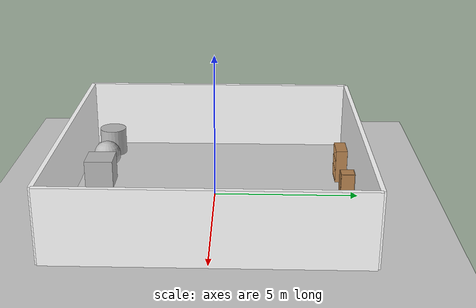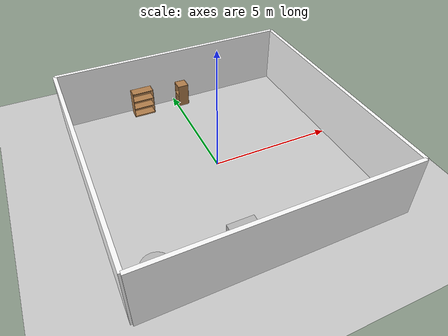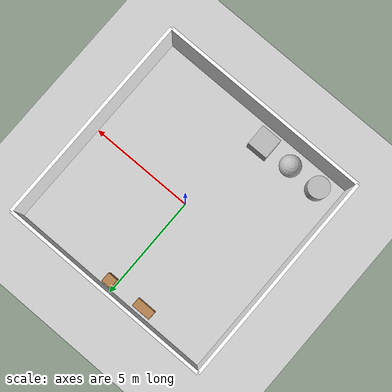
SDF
<sdf version="1.6">
 <world name="default">
  <light name="sun" type="directional">
   <pose>0 0 10 0 -0 0</pose>
   <diffuse>0.8 0.8 0.8 1</diffuse>
   <specular>0.1 0.1 0.1 1</specular>
   <attenuation>
    <range>1000</range>
    <constant>0.9</constant>
    <linear>0.01</linear>
    <quadratic>0.001</quadratic>
   </attenuation>
   <direction>-0.5 0.5 -1</direction>
  </light>
  <model name="ground_plane">
   <static>1</static>
   <link name="link">
    <collision name="collision">
     <geometry><plane><normal>0 0 1</normal><size>100 100</size></plane></geometry>
     <surface><friction><ode><mu>100</mu><mu2>50</mu2></ode></friction></surface>
    </collision>
    <visual name="visual">
     <cast_shadows>0</cast_shadows>
     <geometry><plane><normal>0 0 1</normal><size>100 100</size></plane></geometry>
     <material>
      <script><uri>file://media/materials/scripts/gazebo.material</uri><name>Gazebo/Grey</name></script>
     </material>
    </visual>
   </link>
  </model>
  <gravity>0 0 -9.8</gravity>
  <magnetic_field>6e-06 2.3e-05 -4.2e-05</magnetic_field>
  <atmosphere type="adiabatic"/>
  <physics name="default_physics" default="0" type="ode">
   <max_step_size>0.001</max_step_size>
   <real_time_factor>1</real_time_factor>
   <real_time_update_rate>1000</real_time_update_rate>
  </physics>
  <scene><ambient>0.4 0.4 0.4 1</ambient><background>0.7 0.7 0.7 1</background><shadows>1</shadows></scene>
  <spherical_coordinates>
   <surface_model>EARTH_WGS84</surface_model>
   <latitude_deg>0</latitude_deg>
   <longitude_deg>0</longitude_deg>
   <elevation>0</elevation>
   <heading_deg>0</heading_deg>
  </spherical_coordinates>
  <model name="rwLab_10m">
   <link name="Wall_12">
    <pose>-5 0 0 0 -0 1.5708</pose>
    <inertial>
     <mass>1</mass>
     <inertia><ixx>1</ixx><ixy>0</ixy><ixz>0</ixz><iyy>1</iyy><iyz>0</iyz><izz>1</izz></inertia>
    </inertial>
    <visual name="Wall_12_Visual">
     <pose>0 0 1.25 0 -0 0</pose>
     <geometry><box><size>10 0.15 2.5</size></box></geometry>
     <material>
      <script>
       <uri>model://rwLab_10m/materials/scripts</uri>
       <uri>model://rwLab_10m/materials/textures</uri>
       <name>rw/ceramic</name>
      </script>
      <ambient>1 1 1 1</ambient>
      <diffuse>1 1 1 1</diffuse>
      <specular>0 0 0 1</specular>
      <emissive>0 0 0 1</emissive>
      <shader type="vertex"><normal_map>__default__</normal_map></shader>
     </material>
     <meta><layer>0</layer></meta>
    </visual>
    <collision name="Wall_12_Collision">
     <pose>0 0 1.25 0 -0 0</pose>
     <geometry><box><size>10 0.15 2.5</size></box></geometry>
     <surface>
      <friction>
       <ode><mu>1</mu><mu2>1</mu2><fdir1>0 0 0</fdir1><slip1>0</slip1><slip2>0</slip2></ode>
       <torsional>
        <coefficient>1</coefficient>
        <patch_radius>0</patch_radius>
        <surface_radius>0</surface_radius>
        <use_patch_radius>1</use_patch_radius>
        <ode><slip>0</slip></ode>
       </torsional>
      </friction>
      <bounce><restitution_coefficient>0</restitution_coefficient><threshold>1e+06</threshold></bounce>
      <contact>
       <collide_without_contact>0</collide_without_contact>
       <collide_without_contact_bitmask>1</collide_without_contact_bitmask>
       <collide_bitmask>1</collide_bitmask>
       <ode>
        <soft_cfm>0</soft_cfm>
        <soft_erp>0.2</soft_erp>
        <kp>1e+13</kp>
        <kd>1</kd>
        <max_vel>0.01</max_vel>
        <min_depth>0</min_depth>
       </ode>
       <bullet>
        <split_impulse>1</split_impulse>
        <split_impulse_penetration_threshold>-0.01</split_impulse_penetration_threshold>
        <soft_cfm>0</soft_cfm>
        <soft_erp>0.2</soft_erp>
        <kp>1e+13</kp>
        <kd>1</kd>
       </bullet>
      </contact>
     </surface>
    </collision>
   </link>
   <link name="Wall_13">
    <pose>0 5 0 0 -0 0</pose>
    <inertial>
     <mass>1</mass>
     <inertia><ixx>1</ixx><ixy>0</ixy><ixz>0</ixz><iyy>1</iyy><iyz>0</iyz><izz>1</izz></inertia>
    </inertial>
    <visual name="Wall_13_Visual">
     <pose>0 0 1.25 0 -0 0</pose>
     <geometry><box><size>10 0.15 2.5</size></box></geometry>
     <material>
      <script>
       <uri>model://rwLab_10m/materials/scripts</uri>
       <uri>model://rwLab_10m/materials/textures</uri>
       <name>rw/brick</name>
      </script>
      <ambient>1 1 1 1</ambient>
      <diffuse>1 1 1 1</diffuse>
      <specular>0 0 0 1</specular>
      <emissive>0 0 0 1</emissive>
      <shader type="vertex"><normal_map>__default__</normal_map></shader>
     </material>
     <meta><layer>0</layer></meta>
    </visual>
    <collision name="Wall_13_Collision">
     <pose>0 0 1.25 0 -0 0</pose>
     <geometry><box><size>10 0.15 2.5</size></box></geometry>
     <surface>
      <friction>
       <ode><mu>1</mu><mu2>1</mu2><fdir1>0 0 0</fdir1><slip1>0</slip1><slip2>0</slip2></ode>
       <torsional>
        <coefficient>1</coefficient>
        <patch_radius>0</patch_radius>
        <surface_radius>0</surface_radius>
        <use_patch_radius>1</use_patch_radius>
        <ode><slip>0</slip></ode>
       </torsional>
      </friction>
      <bounce><restitution_coefficient>0</restitution_coefficient><threshold>1e+06</threshold></bounce>
      <contact>
       <collide_without_contact>0</collide_without_contact>
       <collide_without_contact_bitmask>1</collide_without_contact_bitmask>
       <collide_bitmask>1</collide_bitmask>
       <ode>
        <soft_cfm>0</soft_cfm>
        <soft_erp>0.2</soft_erp>
        <kp>1e+13</kp>
        <kd>1</kd>
        <max_vel>0.01</max_vel>
        <min_depth>0</min_depth>
       </ode>
       <bullet>
        <split_impulse>1</split_impulse>
        <split_impulse_penetration_threshold>-0.01</split_impulse_penetration_threshold>
        <soft_cfm>0</soft_cfm>
        <soft_erp>0.2</soft_erp>
        <kp>1e+13</kp>
        <kd>1</kd>
       </bullet>
      </contact>
     </surface>
    </collision>
   </link>
   <link name="Wall_14">
    <pose>5 0 0 0 0 -1.5708</pose>
    <inertial>
     <mass>1</mass>
     <inertia><ixx>1</ixx><ixy>0</ixy><ixz>0</ixz><iyy>1</iyy><iyz>0</iyz><izz>1</izz></inertia>
    </inertial>
    <visual name="Wall_14_Visual">
     <pose>0 0 1.25 0 -0 0</pose>
     <geometry><box><size>10 0.15 2.5</size></box></geometry>
     <material>
      <script>
       <uri>model://rwLab_10m/materials/scripts</uri>
       <uri>model://rwLab_10m/materials/textures</uri>
       <name>rw/hex</name>
      </script>
      <ambient>1 1 1 1</ambient>
      <diffuse>1 1 1 1</diffuse>
      <specular>0 0 0 1</specular>
      <emissive>0 0 0 1</emissive>
      <shader type="vertex"><normal_map>__default__</normal_map></shader>
     </material>
     <meta><layer>0</layer></meta>
    </visual>
    <collision name="Wall_14_Collision">
     <pose>0 0 1.25 0 -0 0</pose>
     <geometry><box><size>10 0.15 2.5</size></box></geometry>
     <surface>
      <friction>
       <ode><mu>1</mu><mu2>1</mu2><fdir1>0 0 0</fdir1><slip1>0</slip1><slip2>0</slip2></ode>
       <torsional>
        <coefficient>1</coefficient>
        <patch_radius>0</patch_radius>
        <surface_radius>0</surface_radius>
        <use_patch_radius>1</use_patch_radius>
        <ode><slip>0</slip></ode>
       </torsional>
      </friction>
      <bounce><restitution_coefficient>0</restitution_coefficient><threshold>1e+06</threshold></bounce>
      <contact>
       <collide_without_contact>0</collide_without_contact>
       <collide_without_contact_bitmask>1</collide_without_contact_bitmask>
       <collide_bitmask>1</collide_bitmask>
       <ode>
        <soft_cfm>0</soft_cfm>
        <soft_erp>0.2</soft_erp>
        <kp>1e+13</kp>
        <kd>1</kd>
        <max_vel>0.01</max_vel>
        <min_depth>0</min_depth>
       </ode>
       <bullet>
        <split_impulse>1</split_impulse>
        <split_impulse_penetration_threshold>-0.01</split_impulse_penetration_threshold>
        <soft_cfm>0</soft_cfm>
        <soft_erp>0.2</soft_erp>
        <kp>1e+13</kp>
        <kd>1</kd>
       </bullet>
      </contact>
     </surface>
    </collision>
   </link>
   <link name="Wall_15">
    <pose>0 -5 0 0 -0 3.14159</pose>
    <inertial>
     <mass>1</mass>
     <inertia><ixx>1</ixx><ixy>0</ixy><ixz>0</ixz><iyy>1</iyy><iyz>0</iyz><izz>1</izz></inertia>
    </inertial>
    <visual name="Wall_15_Visual">
     <pose>0 0 1.25 0 -0 0</pose>
     <geometry><box><size>10 0.15 2.5</size></box></geometry>
     <material>
      <script>
       <uri>model://rwLab_10m/materials/scripts</uri>
       <uri>model://rwLab_10m/materials/textures</uri>
       <name>rw/stone</name>
      </script>
      <ambient>1 1 1 1</ambient>
      <diffuse>1 1 1 1</diffuse>
      <specular>0 0 0 1</specular>
      <emissive>0 0 0 1</emissive>
      <shader type="vertex"><normal_map>__default__</normal_map></shader>
     </material>
     <meta><layer>0</layer></meta>
    </visual>
    <collision name="Wall_15_Collision">
     <pose>0 0 1.25 0 -0 0</pose>
     <geometry><box><size>10 0.15 2.5</size></box></geometry>
     <surface>
      <friction>
       <ode><mu>1</mu><mu2>1</mu2><fdir1>0 0 0</fdir1><slip1>0</slip1><slip2>0</slip2></ode>
       <torsional>
        <coefficient>1</coefficient>
        <patch_radius>0</patch_radius>
        <surface_radius>0</surface_radius>
        <use_patch_radius>1</use_patch_radius>
        <ode><slip>0</slip></ode>
       </torsional>
      </friction>
      <bounce><restitution_coefficient>0</restitution_coefficient><threshold>1e+06</threshold></bounce>
      <contact>
       <collide_without_contact>0</collide_without_contact>
       <collide_without_contact_bitmask>1</collide_without_contact_bitmask>
       <collide_bitmask>1</collide_bitmask>
       <ode>
        <soft_cfm>0</soft_cfm>
        <soft_erp>0.2</soft_erp>
        <kp>1e+13</kp>
        <kd>1</kd>
        <max_vel>0.01</max_vel>
        <min_depth>0</min_depth>
       </ode>
       <bullet>
        <split_impulse>1</split_impulse>
        <split_impulse_penetration_threshold>-0.01</split_impulse_penetration_threshold>
        <soft_cfm>0</soft_cfm>
        <soft_erp>0.2</soft_erp>
        <kp>1e+13</kp>
        <kd>1</kd>
       </bullet>
      </contact>
     </surface>
    </collision>
   </link>
   <static>1</static>
   <pose>0.06313 -0.032079 0 0 -0 0</pose>
  </model>
  <model name="bookshelf">
   <static>1</static>
   <link name="link">
    <inertial><mass>1</mass></inertial>
    <collision name="back">
     <pose>0 0.005 0.6 0 -0 0</pose>
     <geometry><box><size>0.9 0.01 1.2</size></box></geometry>
    </collision>
    <visual name="visual1">
     <pose>0 0.005 0.6 0 -0 0</pose>
     <geometry><box><size>0.9 0.01 1.2</size></box></geometry>
     <material>
      <script><uri>file://media/materials/scripts/gazebo.material</uri><name>Gazebo/Wood</name></script>
     </material>
    </visual>
    <collision name="left_side">
     <pose>0.45 -0.195 0.6 0 -0 0</pose>
     <geometry><box><size>0.02 0.4 1.2</size></box></geometry>
    </collision>
    <visual name="visual2">
     <pose>0.45 -0.195 0.6 0 -0 0</pose>
     <geometry><box><size>0.02 0.4 1.2</size></box></geometry>
     <material>
      <script><uri>file://media/materials/scripts/gazebo.material</uri><name>Gazebo/Wood</name></script>
     </material>
    </visual>
    <collision name="right_side">
     <pose>-0.45 -0.195 0.6 0 -0 0</pose>
     <geometry><box><size>0.02 0.4 1.2</size></box></geometry>
    </collision>
    <visual name="visual3">
     <pose>-0.45 -0.195 0.6 0 -0 0</pose>
     <geometry><box><size>0.02 0.4 1.2</size></box></geometry>
     <material>
      <script><uri>file://media/materials/scripts/gazebo.material</uri><name>Gazebo/Wood</name></script>
     </material>
    </visual>
    <collision name="bottom">
     <pose>0 -0.195 0.03 0 -0 0</pose>
     <geometry><box><size>0.88 0.4 0.06</size></box></geometry>
    </collision>
    <visual name="visual4">
     <pose>0 -0.195 0.03 0 -0 0</pose>
     <geometry><box><size>0.88 0.4 0.06</size></box></geometry>
     <material>
      <script><uri>file://media/materials/scripts/gazebo.material</uri><name>Gazebo/Wood</name></script>
     </material>
    </visual>
    <collision name="top">
     <pose>0 -0.195 1.19 0 -0 0</pose>
     <geometry><box><size>0.88 0.4 0.02</size></box></geometry>
    </collision>
    <visual name="visual5">
     <pose>0 -0.195 1.19 0 -0 0</pose>
     <geometry><box><size>0.88 0.4 0.02</size></box></geometry>
     <material>
      <script><uri>file://media/materials/scripts/gazebo.material</uri><name>Gazebo/Wood</name></script>
     </material>
    </visual>
    <collision name="low_shelf">
     <pose>0 -0.195 0.43 0 -0 0</pose>
     <geometry><box><size>0.88 0.4 0.02</size></box></geometry>
    </collision>
    <visual name="visual6">
     <pose>0 -0.195 0.43 0 -0 0</pose>
     <geometry><box><size>0.88 0.4 0.02</size></box></geometry>
     <material>
      <script><uri>file://media/materials/scripts/gazebo.material</uri><name>Gazebo/Wood</name></script>
     </material>
    </visual>
    <collision name="high_shelf">
     <pose>0 -0.195 0.8 0 -0 0</pose>
     <geometry><box><size>0.88 0.4 0.02</size></box></geometry>
    </collision>
    <visual name="visual7">
     <pose>0 -0.195 0.8 0 -0 0</pose>
     <geometry><box><size>0.88 0.4 0.02</size></box></geometry>
     <material>
      <script><uri>file://media/materials/scripts/gazebo.material</uri><name>Gazebo/Wood</name></script>
     </material>
    </visual>
   </link>
   <pose>-1.58262 4.70504 0 0 -0 0</pose>
  </model>
  <model name="cabinet">
   <static>1</static>
   <link name="cabinet_bottom_plate">
    <inertial>
     <pose>0 0 -1 0 -0 0</pose>
     <inertia><ixx>2.05</ixx><ixy>0</ixy><ixz>0</ixz><iyy>2.05</iyy><iyz>0</iyz><izz>2.05</izz></inertia>
     <mass>25</mass>
    </inertial>
    <collision name="cabinet_bottom_plate_geom">
     <pose>0 0 0.01 0 -0 0</pose>
     <geometry><box><size>0.45 0.45 0.02</size></box></geometry>
    </collision>
    <visual name="cabinet_bottom_plate_geom_visual">
     <pose>0 0 0.01 0 -0 0</pose>
     <geometry><box><size>0.45 0.45 0.02</size></box></geometry>
     <material>
      <script><uri>file://media/materials/scripts/gazebo.material</uri><name>Gazebo/Wood</name></script>
     </material>
    </visual>
    <collision name="cabinet_bottom_plate_geom_cabinet_back_plate">
     <pose>0.235 0 0.51 0 -0 0</pose>
     <geometry><box><size>0.02 0.45 1.02</size></box></geometry>
    </collision>
    <visual name="cabinet_bottom_plate_geom_cabinet_back_plate_visual">
     <pose>0.235 0 0.51 0 -0 0</pose>
     <geometry><box><size>0.02 0.45 1.02</size></box></geometry>
     <material>
      <script><uri>file://media/materials/scripts/gazebo.material</uri><name>Gazebo/Wood</name></script>
     </material>
    </visual>
    <collision name="cabinet_bottom_plate_geom_cabinet_left_plate">
     <pose>0 0.235 0.51 0 -0 0</pose>
     <geometry><box><size>0.45 0.02 1.02</size></box></geometry>
    </collision>
    <visual name="cabinet_bottom_plate_geom_cabinet_left_plate_visual">
     <pose>0 0.235 0.51 0 -0 0</pose>
     <geometry><box><size>0.45 0.02 1.02</size></box></geometry>
     <material>
      <script><uri>file://media/materials/scripts/gazebo.material</uri><name>Gazebo/Wood</name></script>
     </material>
    </visual>
    <collision name="cabinet_bottom_plate_geom_cabinet_middle_plate">
     <pose>0 0 0.51 0 -0 0</pose>
     <geometry><box><size>0.45 0.45 0.02</size></box></geometry>
    </collision>
    <visual name="cabinet_bottom_plate_geom_cabinet_middle_plate_visual">
     <pose>0 0 0.51 0 -0 0</pose>
     <geometry><box><size>0.45 0.45 0.02</size></box></geometry>
     <material>
      <script><uri>file://media/materials/scripts/gazebo.material</uri><name>Gazebo/Wood</name></script>
     </material>
    </visual>
    <collision name="cabinet_bottom_plate_geom_cabinet_right_plate">
     <pose>0 -0.235 0.51 0 -0 0</pose>
     <geometry><box><size>0.45 0.02 1.02</size></box></geometry>
    </collision>
    <visual name="cabinet_bottom_plate_geom_cabinet_right_plate_visual">
     <pose>0 -0.235 0.51 0 -0 0</pose>
     <geometry><box><size>0.45 0.02 1.02</size></box></geometry>
     <material>
      <script><uri>file://media/materials/scripts/gazebo.material</uri><name>Gazebo/Wood</name></script>
     </material>
    </visual>
    <collision name="cabinet_bottom_plate_geom_cabinet_top_plate">
     <pose>0 0 1.01 0 -0 0</pose>
     <geometry><box><size>0.45 0.45 0.02</size></box></geometry>
    </collision>
    <visual name="cabinet_bottom_plate_geom_cabinet_top_plate_visual">
     <pose>0 0 1.01 0 -0 0</pose>
     <geometry><box><size>0.45 0.45 0.02</size></box></geometry>
     <material>
      <script><uri>file://media/materials/scripts/gazebo.material</uri><name>Gazebo/Wood</name></script>
     </material>
    </visual>
   </link>
   <pose>0.282272 4.55916 0 0 -0 0</pose>
  </model>
  <model name="textured_shapes">
   <pose>-2.37049 -4.16434 0.5 0 -0 1.57476</pose>
   <link name="box">
    <pose>0 -1.5 0 0 -0 0</pose>
    <collision name="collision"><geometry><box><size>1 1 1</size></box></geometry></collision>
    <visual name="visual">
     <geometry><box><size>1 1 1</size></box></geometry>
     <material>
      <script>
       <uri>model://textured_shapes/materials/scripts</uri>
       <uri>model://textured_shapes/materials/textures</uri>
       <name>TexturedShape/Squares</name>
      </script>
     </material>
    </visual>
    <inertial>
     <inertia><ixx>1</ixx><ixy>0</ixy><ixz>0</ixz><iyy>1</iyy><iyz>0</iyz><izz>1</izz></inertia>
     <mass>1</mass>
    </inertial>
   </link>
   <link name="sphere">
    <collision name="collision"><geometry><sphere><radius>0.5</radius></sphere></geometry></collision>
    <visual name="visual">
     <geometry><sphere><radius>0.5</radius></sphere></geometry>
     <material>
      <script>
       <uri>model://textured_shapes/materials/scripts</uri>
       <uri>model://textured_shapes/materials/textures</uri>
       <name>TexturedShape/Squares</name>
      </script>
     </material>
    </visual>
    <inertial>
     <inertia><ixx>1</ixx><ixy>0</ixy><ixz>0</ixz><iyy>1</iyy><iyz>0</iyz><izz>1</izz></inertia>
     <mass>1</mass>
    </inertial>
   </link>
   <link name="cylinder">
    <pose>0 1.5 0 0 -0 0</pose>
    <collision name="collision">
     <geometry><cylinder><radius>0.5</radius><length>1</length></cylinder></geometry>
    </collision>
    <visual name="visual">
     <geometry><cylinder><radius>0.5</radius><length>1</length></cylinder></geometry>
     <material>
      <script>
       <uri>model://textured_shapes/materials/scripts</uri>
       <uri>model://textured_shapes/materials/textures</uri>
       <name>TexturedShape/Squares</name>
      </script>
     </material>
    </visual>
    <inertial>
     <inertia><ixx>1</ixx><ixy>0</ixy><ixz>0</ixz><iyy>1</iyy><iyz>0</iyz><izz>1</izz></inertia>
     <mass>1</mass>
    </inertial>
   </link>
  </model>
 </world>
</sdf>
